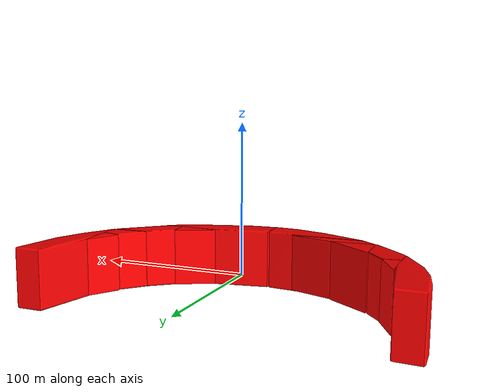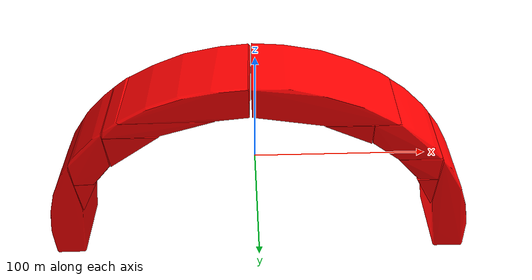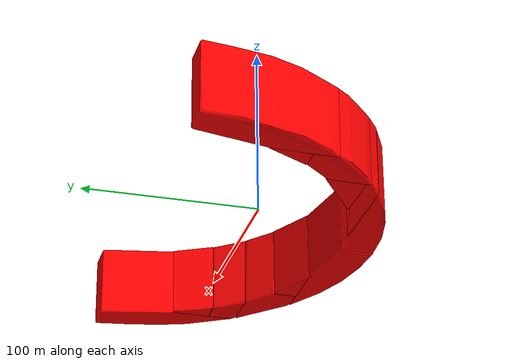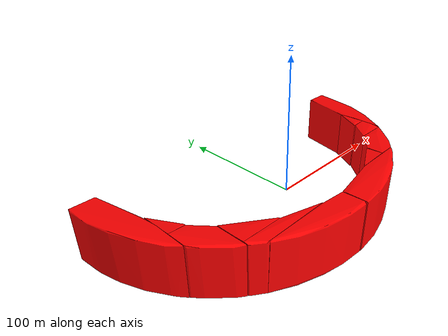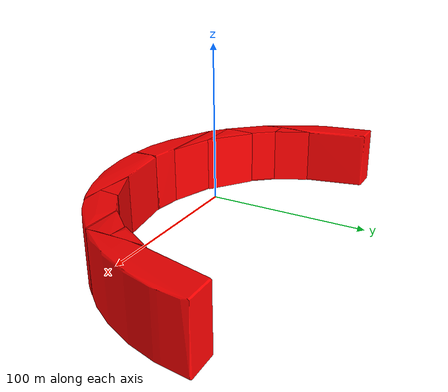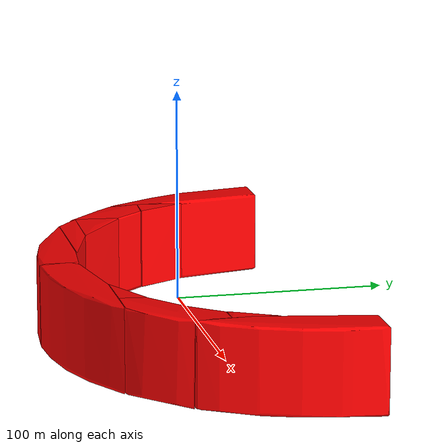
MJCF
<mujoco>
    <asset>
        <mesh file="rainbow_stacker/part5/0_rainbow_part5_20200427_20200429.stl" name="rainbow0"></mesh>
        <mesh file="rainbow_stacker/part5/1_rainbow_part5_20200427_20200429.stl" name="rainbow1"></mesh>
        <mesh file="rainbow_stacker/part5/2_rainbow_part5_20200427_20200429.stl" name="rainbow2"></mesh>
        <mesh file="rainbow_stacker/part5/3_rainbow_part5_20200427_20200429.stl" name="rainbow3"></mesh>
        <mesh file="rainbow_stacker/part5/4_rainbow_part5_20200427_20200429.stl" name="rainbow4"></mesh>
        <mesh file="rainbow_stacker/part5/5_rainbow_part5_20200427_20200429.stl" name="rainbow5"></mesh>
        <mesh file="rainbow_stacker/part5/6_rainbow_part5_20200427_20200429.stl" name="rainbow6"></mesh>
        <mesh file="rainbow_stacker/part5/7_rainbow_part5_20200427_20200429.stl" name="rainbow7"></mesh>
        <mesh file="rainbow_stacker/part5/8_rainbow_part5_20200427_20200429.stl" name="rainbow8"></mesh>
        <mesh file="rainbow_stacker/part5/9_rainbow_part5_20200427_20200429.stl" name="rainbow9"></mesh>
        <mesh file="rainbow_stacker/part5/10_rainbow_part5_20200427_20200429.stl" name="rainbow10"></mesh>
        <mesh file="rainbow_stacker/part5/11_rainbow_part5_20200427_20200429.stl" name="rainbow11"></mesh>
        <material name="block_mat" specular="0" shininess="0.5" reflectance="0" rgba="1 0 0 1"/>
    </asset>
    <worldbody>
        <body quat="0.7071 0 -0.7071 0">
            <geom type="mesh" mesh="rainbow0" material="block_mat"/>
            <geom type="mesh" mesh="rainbow1" material="block_mat"/>
            <geom type="mesh" mesh="rainbow2" material="block_mat"/>
            <geom type="mesh" mesh="rainbow3" material="block_mat"/>
            <geom type="mesh" mesh="rainbow4" material="block_mat"/>
            <geom type="mesh" mesh="rainbow5" material="block_mat"/>
            <geom type="mesh" mesh="rainbow6" material="block_mat"/>
            <geom type="mesh" mesh="rainbow7" material="block_mat"/>
            <geom type="mesh" mesh="rainbow8" material="block_mat"/>
            <geom type="mesh" mesh="rainbow9" material="block_mat"/>
            <geom type="mesh" mesh="rainbow10" material="block_mat"/>
            <geom type="mesh" mesh="rainbow11" material="block_mat"/>
            <joint type="free"/>
        </body>
    </worldbody>
</mujoco>
